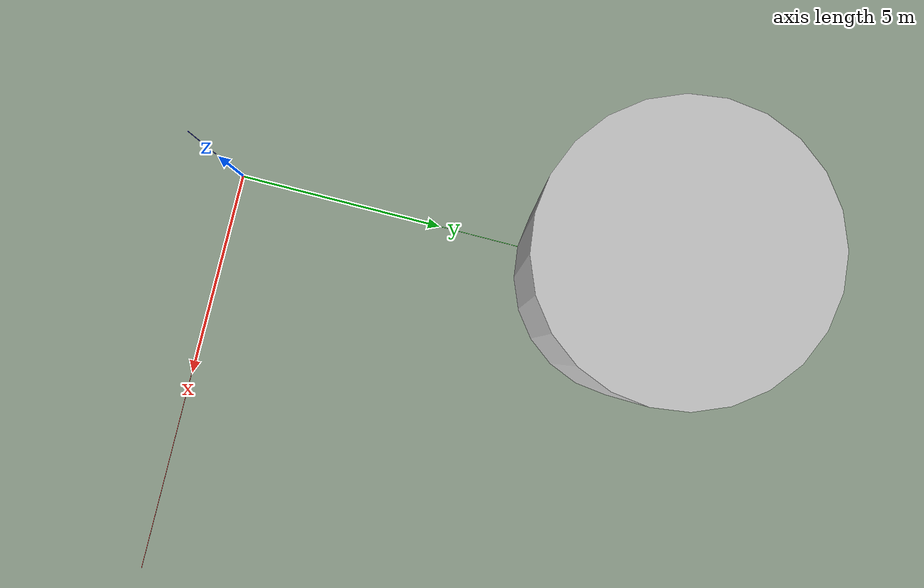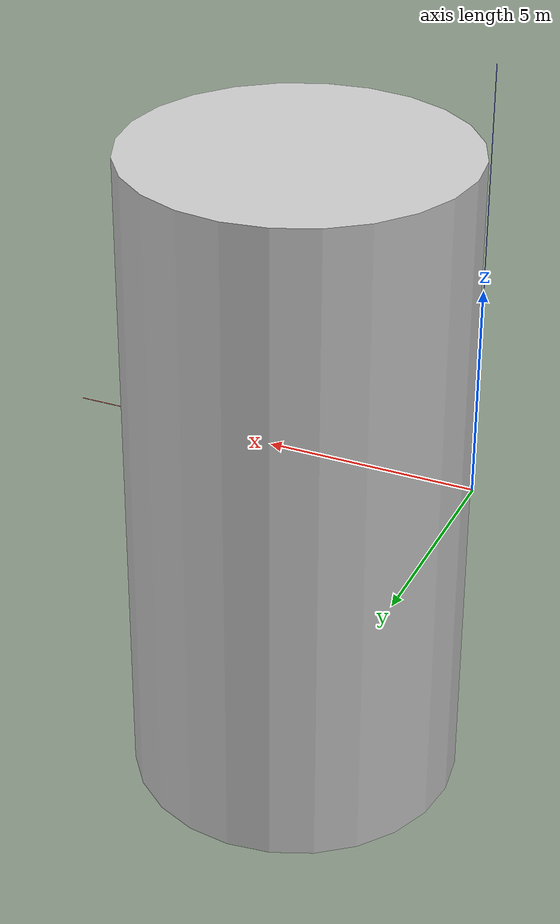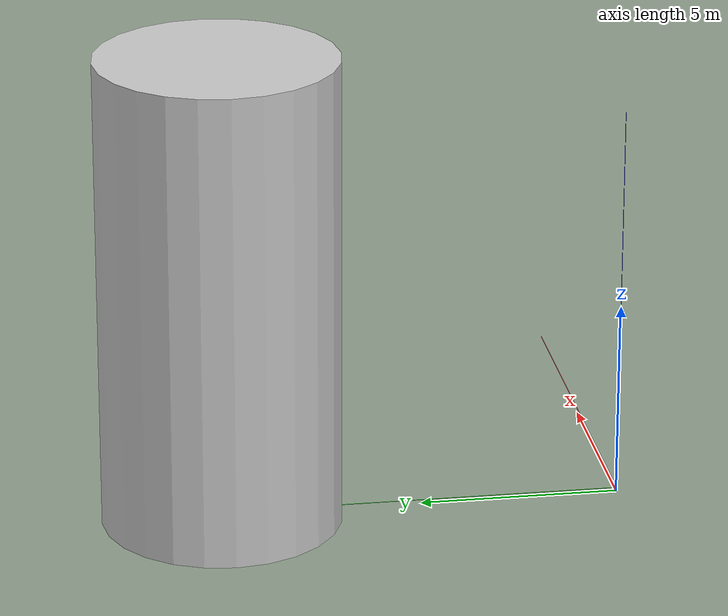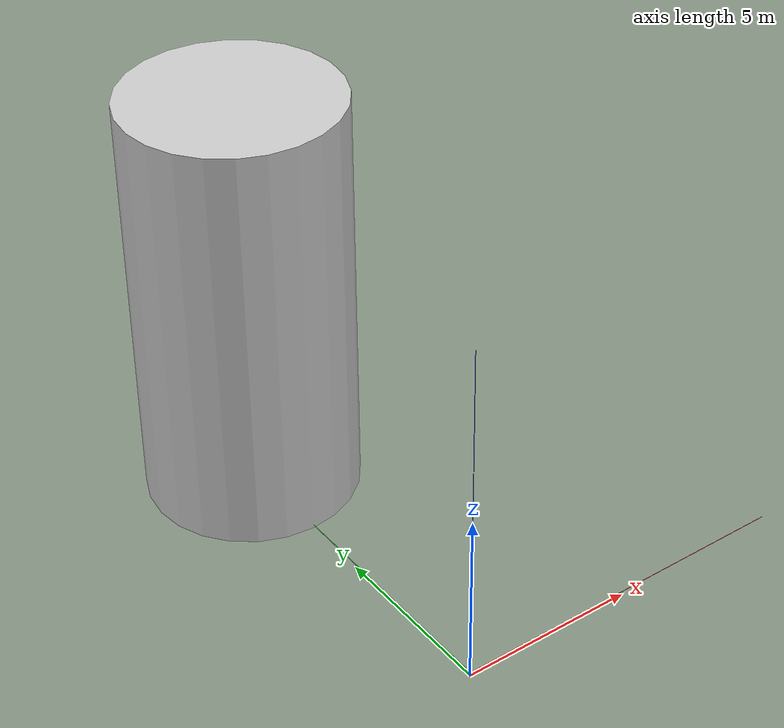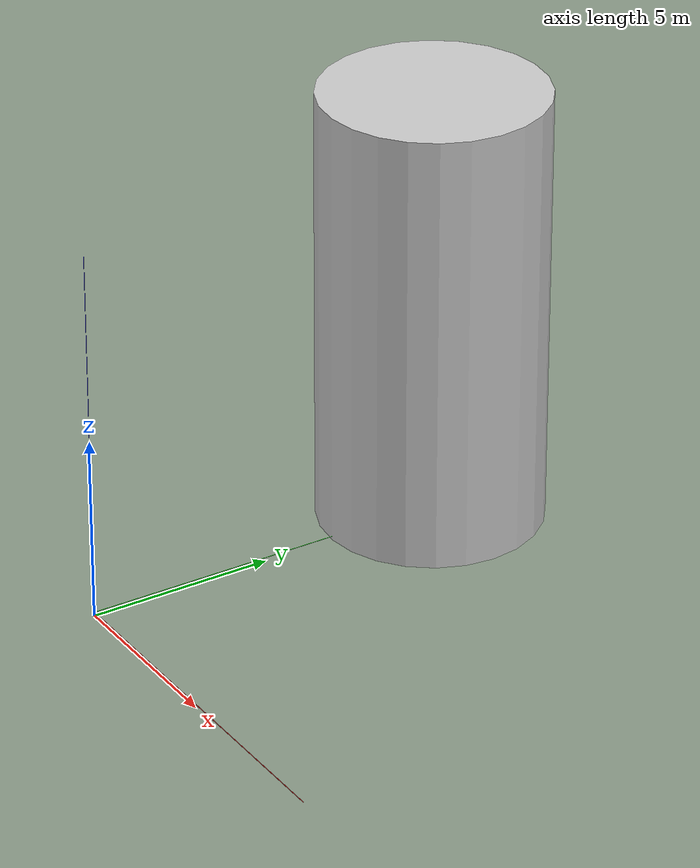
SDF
<sdf version="1.9">
 <world name="iris_runway_lidar">
  <physics name="1ms" type="ignore">
   <max_step_size>0.001</max_step_size>
   <real_time_factor>1.0</real_time_factor>
  </physics>
  <plugin filename="gz-sim-physics-system" name="gz::sim::systems::Physics"/>
  <plugin filename="gz-sim-sensors-system" name="gz::sim::systems::Sensors">
   <render_engine>ogre2</render_engine>
  </plugin>
  <plugin filename="gz-sim-user-commands-system" name="gz::sim::systems::UserCommands"/>
  <plugin filename="gz-sim-scene-broadcaster-system" name="gz::sim::systems::SceneBroadcaster"/>
  <plugin filename="gz-sim-imu-system" name="gz::sim::systems::Imu"/>
  <plugin filename="gz-sim-navsat-system" name="gz::sim::systems::NavSat"/>
  <scene><ambient>1.0 1.0 1.0</ambient><background>0.8 0.8 0.8</background></scene>
  <spherical_coordinates>
   <latitude_deg>-35.363262</latitude_deg>
   <longitude_deg>149.165237</longitude_deg>
   <elevation>584</elevation>
   <heading_deg>0</heading_deg>
   <surface_model>EARTH_WGS84</surface_model>
  </spherical_coordinates>
  <light type="directional" name="sun">
   <pose>0 0 10 0 0 0</pose>
   <diffuse>0.8 0.8 0.8 1</diffuse>
   <specular>0.8 0.8 0.8 1</specular>
   <attenuation>
    <range>1000</range>
    <constant>0.9</constant>
    <linear>0.01</linear>
    <quadratic>0.001</quadratic>
   </attenuation>
   <direction>-0.5 0.1 -0.9</direction>
  </light>
  <model name="axes">
   <static>1</static>
   <link name="link">
    <visual name="r">
     <cast_shadows>0</cast_shadows>
     <pose>5 0 0.1 0 0 0</pose>
     <geometry><box><size>10 0.01 0.01</size></box></geometry>
     <material>
      <ambient>1 0 0 0.8</ambient>
      <diffuse>1 0 0 0.8</diffuse>
      <emissive>1 0 0 0.8</emissive>
      <specular>0.5 0.5 0.5 0.8</specular>
     </material>
    </visual>
    <visual name="g">
     <cast_shadows>0</cast_shadows>
     <pose>0 5 0.1 0 0 0</pose>
     <geometry><box><size>0.01 10 0.01</size></box></geometry>
     <material>
      <ambient>0 1 0 0.8</ambient>
      <diffuse>0 1 0 0.8</diffuse>
      <emissive>0 1 0 0.8</emissive>
      <specular>0.5 0.5 0.5 0.8</specular>
     </material>
    </visual>
    <visual name="b">
     <cast_shadows>0</cast_shadows>
     <pose>0 0 5.1 0 0 0</pose>
     <geometry><box><size>0.01 0.01 10</size></box></geometry>
     <material>
      <ambient>0 0 1 0.8</ambient>
      <diffuse>0 0 1 0.8</diffuse>
      <emissive>0 0 1 0.8</emissive>
      <specular>0.5 0.5 0.5 0.8</specular>
     </material>
    </visual>
    <sensor name="navsat_sensor" type="navsat"><always_on>1</always_on><update_rate>1</update_rate></sensor>
   </link>
  </model>
  <model name="cylinder1">
   <pose>0 10 6 0 0 0</pose>
   <static>true</static>
   <link name="cylinder_link">
    <collision name="cylinder_collision">
     <geometry><cylinder><radius>3.0</radius><length>12.0</length></cylinder></geometry>
    </collision>
    <visual name="cylinder_visual">
     <geometry><cylinder><radius>3.0</radius><length>12.0</length></cylinder></geometry>
     <material>
      <ambient>0.8 0.8 0.8 1</ambient>
      <diffuse>0.8 0.8 0.8 1</diffuse>
      <specular>1.0 1.0 1.0 1</specular>
     </material>
    </visual>
   </link>
  </model>
 </world>
</sdf>
